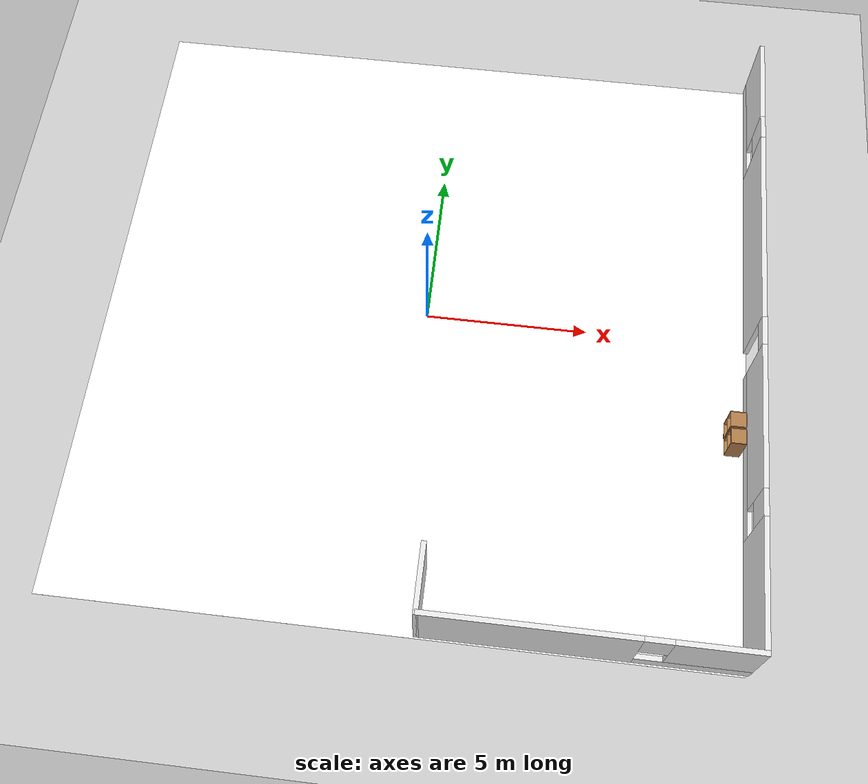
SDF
<sdf version="1.7">
 <world name="default">
  <model name="ground_plane">
   <static>1</static>
   <link name="link">
    <collision name="collision">
     <geometry><plane><normal>0 0 1</normal><size>100 100</size></plane></geometry>
     <surface><friction><ode><mu>100</mu><mu2>50</mu2></ode></friction></surface>
    </collision>
    <visual name="visual">
     <cast_shadows>0</cast_shadows>
     <geometry><plane><normal>0 0 1</normal><size>100 100</size></plane></geometry>
     <material>
      <script><uri>file://media/materials/scripts/gazebo.material</uri><name>Gazebo/Grey</name></script>
     </material>
    </visual>
   </link>
  </model>
  <model name="office_env_w_complete_new">
   <link name="Wall_15">
    <pose>0.931272 -9 0 0 0 -1.5708</pose>
    <visual name="Wall_15_Visual">
     <pose>0 0 1.25 0 -0 0</pose>
     <geometry><box><size>2 0.15 2.5</size></box></geometry>
     <material>
      <script>
       <uri>model://office_env_w/materials/scripts</uri>
       <uri>model://office_env_w/materials/textures</uri>
       <name>wall_white</name>
      </script>
      <shader type="pixel"/>
     </material>
     <meta><layer>0</layer></meta>
    </visual>
    <collision name="Wall_15_Collision">
     <pose>0 0 1.25 0 -0 0</pose>
     <geometry><box><size>2 0.15 2.5</size></box></geometry>
     <surface>
      <friction>
       <ode><mu>1</mu><mu2>1</mu2><fdir1>0 0 0</fdir1><slip1>0</slip1><slip2>0</slip2></ode>
       <torsional>
        <coefficient>1</coefficient>
        <patch_radius>0</patch_radius>
        <surface_radius>0</surface_radius>
        <use_patch_radius>1</use_patch_radius>
        <ode><slip>0</slip></ode>
       </torsional>
      </friction>
      <bounce><restitution_coefficient>0</restitution_coefficient><threshold>1e+06</threshold></bounce>
      <contact>
       <collide_without_contact>0</collide_without_contact>
       <collide_without_contact_bitmask>1</collide_without_contact_bitmask>
       <collide_bitmask>1</collide_bitmask>
       <ode>
        <soft_cfm>0</soft_cfm>
        <soft_erp>0.2</soft_erp>
        <kp>1e+13</kp>
        <kd>1</kd>
        <max_vel>0.01</max_vel>
        <min_depth>0</min_depth>
       </ode>
       <bullet>
        <split_impulse>1</split_impulse>
        <split_impulse_penetration_threshold>-0.01</split_impulse_penetration_threshold>
        <soft_cfm>0</soft_cfm>
        <soft_erp>0.2</soft_erp>
        <kp>1e+13</kp>
        <kd>1</kd>
       </bullet>
      </contact>
     </surface>
    </collision>
   </link>
   <link name="Wall_16">
    <pose>5.48127 -9.925 0 0 -0 0</pose>
    <visual name="Wall_16_Visual_0">
     <pose>-1.61303 0 1.25 0 -0 0</pose>
     <geometry><box><size>6.02393 0.15 2.5</size></box></geometry>
     <material>
      <script>
       <uri>model://office_env_w/materials/scripts</uri>
       <uri>model://office_env_w/materials/textures</uri>
       <name>wall_white</name>
      </script>
      <shader type="pixel"/>
     </material>
     <meta><layer>0</layer></meta>
    </visual>
    <visual name="Wall_16_Visual_1">
     <pose>3.01197 0 0.25 0 -0 0</pose>
     <geometry><box><size>3.22607 0.15 0.5</size></box></geometry>
     <material>
      <script>
       <uri>model://office_env_w/materials/scripts</uri>
       <uri>model://office_env_w/materials/textures</uri>
       <name>wall_white</name>
      </script>
      <shader type="pixel"/>
     </material>
     <meta><layer>0</layer></meta>
    </visual>
    <visual name="Wall_16_Visual_2">
     <pose>3.41197 0 1.5 0 -0 0</pose>
     <geometry><box><size>2.42607 0.15 2</size></box></geometry>
     <material>
      <script>
       <uri>model://office_env_w/materials/scripts</uri>
       <uri>model://office_env_w/materials/textures</uri>
       <name>wall_white</name>
      </script>
      <shader type="pixel"/>
     </material>
     <meta><layer>0</layer></meta>
    </visual>
    <visual name="Wall_16_Visual_3">
     <pose>1.79893 0 1.9 0 -0 0</pose>
     <geometry><box><size>0.8 0.15 1.2</size></box></geometry>
     <material>
      <script>
       <uri>model://office_env_w/materials/scripts</uri>
       <uri>model://office_env_w/materials/textures</uri>
       <name>wall_white</name>
      </script>
      <shader type="pixel"/>
     </material>
     <meta><layer>0</layer></meta>
    </visual>
    <collision name="Wall_16_Collision_0">
     <pose>-1.61303 0 1.25 0 -0 0</pose>
     <geometry><box><size>6.02393 0.15 2.5</size></box></geometry>
     <surface>
      <friction>
       <ode><mu>1</mu><mu2>1</mu2><fdir1>0 0 0</fdir1><slip1>0</slip1><slip2>0</slip2></ode>
       <torsional>
        <coefficient>1</coefficient>
        <patch_radius>0</patch_radius>
        <surface_radius>0</surface_radius>
        <use_patch_radius>1</use_patch_radius>
        <ode><slip>0</slip></ode>
       </torsional>
      </friction>
      <bounce><restitution_coefficient>0</restitution_coefficient><threshold>1e+06</threshold></bounce>
      <contact>
       <collide_without_contact>0</collide_without_contact>
       <collide_without_contact_bitmask>1</collide_without_contact_bitmask>
       <collide_bitmask>1</collide_bitmask>
       <ode>
        <soft_cfm>0</soft_cfm>
        <soft_erp>0.2</soft_erp>
        <kp>1e+13</kp>
        <kd>1</kd>
        <max_vel>0.01</max_vel>
        <min_depth>0</min_depth>
       </ode>
       <bullet>
        <split_impulse>1</split_impulse>
        <split_impulse_penetration_threshold>-0.01</split_impulse_penetration_threshold>
        <soft_cfm>0</soft_cfm>
        <soft_erp>0.2</soft_erp>
        <kp>1e+13</kp>
        <kd>1</kd>
       </bullet>
      </contact>
     </surface>
    </collision>
    <collision name="Wall_16_Collision_1">
     <pose>3.01197 0 0.25 0 -0 0</pose>
     <geometry><box><size>3.22607 0.15 0.5</size></box></geometry>
     <surface>
      <friction>
       <ode><mu>1</mu><mu2>1</mu2><fdir1>0 0 0</fdir1><slip1>0</slip1><slip2>0</slip2></ode>
       <torsional>
        <coefficient>1</coefficient>
        <patch_radius>0</patch_radius>
        <surface_radius>0</surface_radius>
        <use_patch_radius>1</use_patch_radius>
        <ode><slip>0</slip></ode>
       </torsional>
      </friction>
      <bounce><restitution_coefficient>0</restitution_coefficient><threshold>1e+06</threshold></bounce>
      <contact>
       <collide_without_contact>0</collide_without_contact>
       <collide_without_contact_bitmask>1</collide_without_contact_bitmask>
       <collide_bitmask>1</collide_bitmask>
       <ode>
        <soft_cfm>0</soft_cfm>
        <soft_erp>0.2</soft_erp>
        <kp>1e+13</kp>
        <kd>1</kd>
        <max_vel>0.01</max_vel>
        <min_depth>0</min_depth>
       </ode>
       <bullet>
        <split_impulse>1</split_impulse>
        <split_impulse_penetration_threshold>-0.01</split_impulse_penetration_threshold>
        <soft_cfm>0</soft_cfm>
        <soft_erp>0.2</soft_erp>
        <kp>1e+13</kp>
        <kd>1</kd>
       </bullet>
      </contact>
     </surface>
    </collision>
    <collision name="Wall_16_Collision_2">
     <pose>3.41197 0 1.5 0 -0 0</pose>
     <geometry><box><size>2.42607 0.15 2</size></box></geometry>
     <surface>
      <friction>
       <ode><mu>1</mu><mu2>1</mu2><fdir1>0 0 0</fdir1><slip1>0</slip1><slip2>0</slip2></ode>
       <torsional>
        <coefficient>1</coefficient>
        <patch_radius>0</patch_radius>
        <surface_radius>0</surface_radius>
        <use_patch_radius>1</use_patch_radius>
        <ode><slip>0</slip></ode>
       </torsional>
      </friction>
      <bounce><restitution_coefficient>0</restitution_coefficient><threshold>1e+06</threshold></bounce>
      <contact>
       <collide_without_contact>0</collide_without_contact>
       <collide_without_contact_bitmask>1</collide_without_contact_bitmask>
       <collide_bitmask>1</collide_bitmask>
       <ode>
        <soft_cfm>0</soft_cfm>
        <soft_erp>0.2</soft_erp>
        <kp>1e+13</kp>
        <kd>1</kd>
        <max_vel>0.01</max_vel>
        <min_depth>0</min_depth>
       </ode>
       <bullet>
        <split_impulse>1</split_impulse>
        <split_impulse_penetration_threshold>-0.01</split_impulse_penetration_threshold>
        <soft_cfm>0</soft_cfm>
        <soft_erp>0.2</soft_erp>
        <kp>1e+13</kp>
        <kd>1</kd>
       </bullet>
      </contact>
     </surface>
    </collision>
    <collision name="Wall_16_Collision_3">
     <pose>1.79893 0 1.9 0 -0 0</pose>
     <geometry><box><size>0.8 0.15 1.2</size></box></geometry>
     <surface>
      <friction>
       <ode><mu>1</mu><mu2>1</mu2><fdir1>0 0 0</fdir1><slip1>0</slip1><slip2>0</slip2></ode>
       <torsional>
        <coefficient>1</coefficient>
        <patch_radius>0</patch_radius>
        <surface_radius>0</surface_radius>
        <use_patch_radius>1</use_patch_radius>
        <ode><slip>0</slip></ode>
       </torsional>
      </friction>
      <bounce><restitution_coefficient>0</restitution_coefficient><threshold>1e+06</threshold></bounce>
      <contact>
       <collide_without_contact>0</collide_without_contact>
       <collide_without_contact_bitmask>1</collide_without_contact_bitmask>
       <collide_bitmask>1</collide_bitmask>
       <ode>
        <soft_cfm>0</soft_cfm>
        <soft_erp>0.2</soft_erp>
        <kp>1e+13</kp>
        <kd>1</kd>
        <max_vel>0.01</max_vel>
        <min_depth>0</min_depth>
       </ode>
       <bullet>
        <split_impulse>1</split_impulse>
        <split_impulse_penetration_threshold>-0.01</split_impulse_penetration_threshold>
        <soft_cfm>0</soft_cfm>
        <soft_erp>0.2</soft_erp>
        <kp>1e+13</kp>
        <kd>1</kd>
       </bullet>
      </contact>
     </surface>
    </collision>
   </link>
   <link name="Wall_17">
    <pose>10.0313 0 0 0 -0 1.5708</pose>
    <visual name="Wall_17_Visual_0">
     <pose>-8.12184 0 1.25 0 -0 0</pose>
     <geometry><box><size>3.75631 0.15 2.5</size></box></geometry>
     <material>
      <script>
       <uri>model://office_env_w/materials/scripts</uri>
       <uri>model://office_env_w/materials/textures</uri>
       <name>wall_white</name>
      </script>
      <shader type="pixel"/>
     </material>
     <meta><layer>0</layer></meta>
    </visual>
    <visual name="Wall_17_Visual_1">
     <pose>3.09096 0 1.25 0 -0 0</pose>
     <geometry><box><size>6.45362 0.15 2.5</size></box></geometry>
     <material>
      <script>
       <uri>model://office_env_w/materials/scripts</uri>
       <uri>model://office_env_w/materials/textures</uri>
       <name>wall_white</name>
      </script>
      <shader type="pixel"/>
     </material>
     <meta><layer>0</layer></meta>
    </visual>
    <visual name="Wall_17_Visual_2">
     <pose>-3.63977 0 0.25 0 -0 0</pose>
     <geometry><box><size>5.20784 0.15 0.5</size></box></geometry>
     <material>
      <script>
       <uri>model://office_env_w/materials/scripts</uri>
       <uri>model://office_env_w/materials/textures</uri>
       <name>wall_white</name>
      </script>
      <shader type="pixel"/>
     </material>
     <meta><layer>0</layer></meta>
    </visual>
    <visual name="Wall_17_Visual_3">
     <pose>8.15888 0 0.25 0 -0 0</pose>
     <geometry><box><size>3.68223 0.15 0.5</size></box></geometry>
     <material>
      <script>
       <uri>model://office_env_w/materials/scripts</uri>
       <uri>model://office_env_w/materials/textures</uri>
       <name>wall_white</name>
      </script>
      <shader type="pixel"/>
     </material>
     <meta><layer>0</layer></meta>
    </visual>
    <visual name="Wall_17_Visual_4">
     <pose>-3.23977 0 1.5 0 -0 0</pose>
     <geometry><box><size>4.40784 0.15 2</size></box></geometry>
     <material>
      <script>
       <uri>model://office_env_w/materials/scripts</uri>
       <uri>model://office_env_w/materials/textures</uri>
       <name>wall_white</name>
      </script>
      <shader type="pixel"/>
     </material>
     <meta><layer>0</layer></meta>
    </visual>
    <visual name="Wall_17_Visual_5">
     <pose>-3.23977 0 1.5 0 -0 0</pose>
     <geometry><box><size>4.40784 0.15 2</size></box></geometry>
     <material>
      <script>
       <uri>model://office_env_w/materials/scripts</uri>
       <uri>model://office_env_w/materials/textures</uri>
       <name>wall_white</name>
      </script>
      <shader type="pixel"/>
     </material>
     <meta><layer>0</layer></meta>
    </visual>
    <visual name="Wall_17_Visual_6">
     <pose>8.55889 0 1.5 0 -0 0</pose>
     <geometry><box><size>2.88223 0.15 2</size></box></geometry>
     <material>
      <script>
       <uri>model://office_env_w/materials/scripts</uri>
       <uri>model://office_env_w/materials/textures</uri>
       <name>wall_white</name>
      </script>
      <shader type="pixel"/>
     </material>
     <meta><layer>0</layer></meta>
    </visual>
    <visual name="Wall_17_Visual_7">
     <pose>-5.84369 0 1.9 0 -0 0</pose>
     <geometry><box><size>0.8 0.15 1.2</size></box></geometry>
     <material>
      <script>
       <uri>model://office_env_w/materials/scripts</uri>
       <uri>model://office_env_w/materials/textures</uri>
       <name>wall_white</name>
      </script>
      <shader type="pixel"/>
     </material>
     <meta><layer>0</layer></meta>
    </visual>
    <visual name="Wall_17_Visual_8">
     <pose>6.71777 0 1.9 0 -0 0</pose>
     <geometry><box><size>0.8 0.15 1.2</size></box></geometry>
     <material>
      <script>
       <uri>model://office_env_w/materials/scripts</uri>
       <uri>model://office_env_w/materials/textures</uri>
       <name>wall_white</name>
      </script>
      <shader type="pixel"/>
     </material>
     <meta><layer>0</layer></meta>
    </visual>
    <visual name="Wall_17_Visual_9">
     <pose>-0.585848 0 2.25 0 -0 0</pose>
     <geometry><box><size>0.9 0.15 0.5</size></box></geometry>
     <material>
      <script>
       <uri>model://office_env_w/materials/scripts</uri>
       <uri>model://office_env_w/materials/textures</uri>
       <name>wall_white</name>
      </script>
      <shader type="pixel"/>
     </material>
     <meta><layer>0</layer></meta>
    </visual>
    <visual name="Wall_17_Visual_10">
     <pose>-0.585848 0 2.25 0 -0 0</pose>
     <geometry><box><size>0.9 0.15 0.5</size></box></geometry>
     <material>
      <script>
       <uri>model://office_env_w/materials/scripts</uri>
       <uri>model://office_env_w/materials/textures</uri>
       <name>wall_white</name>
      </script>
      <shader type="pixel"/>
     </material>
     <meta><layer>0</layer></meta>
    </visual>
    <collision name="Wall_17_Collision_0">
     <pose>-8.12184 0 1.25 0 -0 0</pose>
     <geometry><box><size>3.75631 0.15 2.5</size></box></geometry>
     <surface>
      <friction>
       <ode><mu>1</mu><mu2>1</mu2><fdir1>0 0 0</fdir1><slip1>0</slip1><slip2>0</slip2></ode>
       <torsional>
        <coefficient>1</coefficient>
        <patch_radius>0</patch_radius>
        <surface_radius>0</surface_radius>
        <use_patch_radius>1</use_patch_radius>
        <ode><slip>0</slip></ode>
       </torsional>
      </friction>
      <bounce><restitution_coefficient>0</restitution_coefficient><threshold>1e+06</threshold></bounce>
      <contact>
       <collide_without_contact>0</collide_without_contact>
       <collide_without_contact_bitmask>1</collide_without_contact_bitmask>
       <collide_bitmask>1</collide_bitmask>
       <ode>
        <soft_cfm>0</soft_cfm>
        <soft_erp>0.2</soft_erp>
        <kp>1e+13</kp>
        <kd>1</kd>
        <max_vel>0.01</max_vel>
        <min_depth>0</min_depth>
       </ode>
       <bullet>
        <split_impulse>1</split_impulse>
        <split_impulse_penetration_threshold>-0.01</split_impulse_penetration_threshold>
        <soft_cfm>0</soft_cfm>
        <soft_erp>0.2</soft_erp>
        <kp>1e+13</kp>
        <kd>1</kd>
       </bullet>
      </contact>
     </surface>
    </collision>
    <collision name="Wall_17_Collision_1">
     <pose>3.09096 0 1.25 0 -0 0</pose>
     <geometry><box><size>6.45362 0.15 2.5</size></box></geometry>
     <surface>
      <friction>
       <ode><mu>1</mu><mu2>1</mu2><fdir1>0 0 0</fdir1><slip1>0</slip1><slip2>0</slip2></ode>
       <torsional>
        <coefficient>1</coefficient>
        <patch_radius>0</patch_radius>
        <surface_radius>0</surface_radius>
        <use_patch_radius>1</use_patch_radius>
        <ode><slip>0</slip></ode>
       </torsional>
      </friction>
      <bounce><restitution_coefficient>0</restitution_coefficient><threshold>1e+06</threshold></bounce>
      <contact>
       <collide_without_contact>0</collide_without_contact>
       <collide_without_contact_bitmask>1</collide_without_contact_bitmask>
       <collide_bitmask>1</collide_bitmask>
       <ode>
        <soft_cfm>0</soft_cfm>
        <soft_erp>0.2</soft_erp>
        <kp>1e+13</kp>
        <kd>1</kd>
        <max_vel>0.01</max_vel>
        <min_depth>0</min_depth>
       </ode>
       <bullet>
        <split_impulse>1</split_impulse>
        <split_impulse_penetration_threshold>-0.01</split_impulse_penetration_threshold>
        <soft_cfm>0</soft_cfm>
        <soft_erp>0.2</soft_erp>
        <kp>1e+13</kp>
        <kd>1</kd>
       </bullet>
      </contact>
     </surface>
    </collision>
    <collision name="Wall_17_Collision_2">
     <pose>-3.63977 0 0.25 0 -0 0</pose>
     <geometry><box><size>5.20784 0.15 0.5</size></box></geometry>
     <surface>
      <friction>
       <ode><mu>1</mu><mu2>1</mu2><fdir1>0 0 0</fdir1><slip1>0</slip1><slip2>0</slip2></ode>
       <torsional>
        <coefficient>1</coefficient>
        <patch_radius>0</patch_radius>
        <surface_radius>0</surface_radius>
        <use_patch_radius>1</use_patch_radius>
        <ode><slip>0</slip></ode>
       </torsional>
      </friction>
      <bounce><restitution_coefficient>0</restitution_coefficient><threshold>1e+06</threshold></bounce>
      <contact>
       <collide_without_contact>0</collide_without_contact>
       <collide_without_contact_bitmask>1</collide_without_contact_bitmask>
       <collide_bitmask>1</collide_bitmask>
       <ode>
        <soft_cfm>0</soft_cfm>
        <soft_erp>0.2</soft_erp>
        <kp>1e+13</kp>
        <kd>1</kd>
        <max_vel>0.01</max_vel>
        <min_depth>0</min_depth>
       </ode>
       <bullet>
        <split_impulse>1</split_impulse>
        <split_impulse_penetration_threshold>-0.01</split_impulse_penetration_threshold>
        <soft_cfm>0</soft_cfm>
        <soft_erp>0.2</soft_erp>
        <kp>1e+13</kp>
        <kd>1</kd>
       </bullet>
      </contact>
     </surface>
    </collision>
    <collision name="Wall_17_Collision_3">
     <pose>8.15888 0 0.25 0 -0 0</pose>
     <geometry><box><size>3.68223 0.15 0.5</size></box></geometry>
     <surface>
      <friction>
       <ode><mu>1</mu><mu2>1</mu2><fdir1>0 0 0</fdir1><slip1>0</slip1><slip2>0</slip2></ode>
       <torsional>
        <coefficient>1</coefficient>
        <patch_radius>0</patch_radius>
        <surface_radius>0</surface_radius>
        <use_patch_radius>1</use_patch_radius>
        <ode><slip>0</slip></ode>
       </torsional>
      </friction>
      <bounce><restitution_coefficient>0</restitution_coefficient><threshold>1e+06</threshold></bounce>
      <contact>
       <collide_without_contact>0</collide_without_contact>
       <collide_without_contact_bitmask>1</collide_without_contact_bitmask>
       <collide_bitmask>1</collide_bitmask>
       <ode>
        <soft_cfm>0</soft_cfm>
        <soft_erp>0.2</soft_erp>
        <kp>1e+13</kp>
        <kd>1</kd>
        <max_vel>0.01</max_vel>
        <min_depth>0</min_depth>
       </ode>
       <bullet>
        <split_impulse>1</split_impulse>
        <split_impulse_penetration_threshold>-0.01</split_impulse_penetration_threshold>
        <soft_cfm>0</soft_cfm>
        <soft_erp>0.2</soft_erp>
        <kp>1e+13</kp>
        <kd>1</kd>
       </bullet>
      </contact>
     </surface>
    </collision>
    <collision name="Wall_17_Collision_4">
     <pose>-3.23977 0 1.5 0 -0 0</pose>
     <geometry><box><size>4.40784 0.15 2</size></box></geometry>
     <surface>
      <friction>
       <ode><mu>1</mu><mu2>1</mu2><fdir1>0 0 0</fdir1><slip1>0</slip1><slip2>0</slip2></ode>
       <torsional>
        <coefficient>1</coefficient>
        <patch_radius>0</patch_radius>
        <surface_radius>0</surface_radius>
        <use_patch_radius>1</use_patch_radius>
        <ode><slip>0</slip></ode>
       </torsional>
      </friction>
      <bounce><restitution_coefficient>0</restitution_coefficient><threshold>1e+06</threshold></bounce>
      <contact>
       <collide_without_contact>0</collide_without_contact>
       <collide_without_contact_bitmask>1</collide_without_contact_bitmask>
       <collide_bitmask>1</collide_bitmask>
       <ode>
        <soft_cfm>0</soft_cfm>
        <soft_erp>0.2</soft_erp>
        <kp>1e+13</kp>
        <kd>1</kd>
        <max_vel>0.01</max_vel>
        <min_depth>0</min_depth>
       </ode>
       <bullet>
        <split_impulse>1</split_impulse>
        <split_impulse_penetration_threshold>-0.01</split_impulse_penetration_threshold>
        <soft_cfm>0</soft_cfm>
        <soft_erp>0.2</soft_erp>
        <kp>1e+13</kp>
        <kd>1</kd>
       </bullet>
      </contact>
     </surface>
    </collision>
    <collision name="Wall_17_Collision_5">
     <pose>-3.23977 0 1.5 0 -0 0</pose>
     <geometry><box><size>4.40784 0.15 2</size></box></geometry>
     <surface>
      <friction>
       <ode><mu>1</mu><mu2>1</mu2><fdir1>0 0 0</fdir1><slip1>0</slip1><slip2>0</slip2></ode>
       <torsional>
        <coefficient>1</coefficient>
        <patch_radius>0</patch_radius>
        <surface_radius>0</surface_radius>
        <use_patch_radius>1</use_patch_radius>
        <ode><slip>0</slip></ode>
       </torsional>
      </friction>
      <bounce><restitution_coefficient>0</restitution_coefficient><threshold>1e+06</threshold></bounce>
      <contact>
       <collide_without_contact>0</collide_without_contact>
       <collide_without_contact_bitmask>1</collide_without_contact_bitmask>
       <collide_bitmask>1</collide_bitmask>
       <ode>
        <soft_cfm>0</soft_cfm>
        <soft_erp>0.2</soft_erp>
        <kp>1e+13</kp>
        <kd>1</kd>
        <max_vel>0.01</max_vel>
        <min_depth>0</min_depth>
       </ode>
       <bullet>
        <split_impulse>1</split_impulse>
        <split_impulse_penetration_threshold>-0.01</split_impulse_penetration_threshold>
        <soft_cfm>0</soft_cfm>
        <soft_erp>0.2</soft_erp>
        <kp>1e+13</kp>
        <kd>1</kd>
       </bullet>
      </contact>
     </surface>
    </collision>
    <collision name="Wall_17_Collision_6">
     <pose>8.55889 0 1.5 0 -0 0</pose>
     <geometry><box><size>2.88223 0.15 2</size></box></geometry>
     <surface>
      <friction>
       <ode><mu>1</mu><mu2>1</mu2><fdir1>0 0 0</fdir1><slip1>0</slip1><slip2>0</slip2></ode>
       <torsional>
        <coefficient>1</coefficient>
        <patch_radius>0</patch_radius>
        <surface_radius>0</surface_radius>
        <use_patch_radius>1</use_patch_radius>
        <ode><slip>0</slip></ode>
       </torsional>
      </friction>
      <bounce><restitution_coefficient>0</restitution_coefficient><threshold>1e+06</threshold></bounce>
      <contact>
       <collide_without_contact>0</collide_without_contact>
       <collide_without_contact_bitmask>1</collide_without_contact_bitmask>
       <collide_bitmask>1</collide_bitmask>
       <ode>
        <soft_cfm>0</soft_cfm>
        <soft_erp>0.2</soft_erp>
        <kp>1e+13</kp>
        <kd>1</kd>
        <max_vel>0.01</max_vel>
        <min_depth>0</min_depth>
       </ode>
       <bullet>
        <split_impulse>1</split_impulse>
        <split_impulse_penetration_threshold>-0.01</split_impulse_penetration_threshold>
        <soft_cfm>0</soft_cfm>
        <soft_erp>0.2</soft_erp>
        <kp>1e+13</kp>
        <kd>1</kd>
       </bullet>
      </contact>
     </surface>
    </collision>
    <collision name="Wall_17_Collision_7">
     <pose>-5.84369 0 1.9 0 -0 0</pose>
     <geometry><box><size>0.8 0.15 1.2</size></box></geometry>
     <surface>
      <friction>
       <ode><mu>1</mu><mu2>1</mu2><fdir1>0 0 0</fdir1><slip1>0</slip1><slip2>0</slip2></ode>
       <torsional>
        <coefficient>1</coefficient>
        <patch_radius>0</patch_radius>
        <surface_radius>0</surface_radius>
        <use_patch_radius>1</use_patch_radius>
        <ode><slip>0</slip></ode>
       </torsional>
      </friction>
      <bounce><restitution_coefficient>0</restitution_coefficient><threshold>1e+06</threshold></bounce>
      <contact>
       <collide_without_contact>0</collide_without_contact>
       <collide_without_contact_bitmask>1</collide_without_contact_bitmask>
       <collide_bitmask>1</collide_bitmask>
       <ode>
        <soft_cfm>0</soft_cfm>
        <soft_erp>0.2</soft_erp>
        <kp>1e+13</kp>
        <kd>1</kd>
        <max_vel>0.01</max_vel>
        <min_depth>0</min_depth>
       </ode>
       <bullet>
        <split_impulse>1</split_impulse>
        <split_impulse_penetration_threshold>-0.01</split_impulse_penetration_threshold>
        <soft_cfm>0</soft_cfm>
        <soft_erp>0.2</soft_erp>
        <kp>1e+13</kp>
        <kd>1</kd>
       </bullet>
      </contact>
     </surface>
    </collision>
    <collision name="Wall_17_Collision_9">
     <pose>-0.585848 0 2.25 0 -0 0</pose>
     <geometry><box><size>0.9 0.15 0.5</size></box></geometry>
     <surface>
      <friction>
       <ode><mu>1</mu><mu2>1</mu2><fdir1>0 0 0</fdir1><slip1>0</slip1><slip2>0</slip2></ode>
       <torsional>
        <coefficient>1</coefficient>
        <patch_radius>0</patch_radius>
        <surface_radius>0</surface_radius>
        <use_patch_radius>1</use_patch_radius>
        <ode><slip>0</slip></ode>
       </torsional>
      </friction>
      <bounce><restitution_coefficient>0</restitution_coefficient><threshold>1e+06</threshold></bounce>
      <contact>
       <collide_without_contact>0</collide_without_contact>
       <collide_without_contact_bitmask>1</collide_without_contact_bitmask>
       <collide_bitmask>1</collide_bitmask>
       <ode>
        <soft_cfm>0</soft_cfm>
        <soft_erp>0.2</soft_erp>
        <kp>1e+13</kp>
        <kd>1</kd>
        <max_vel>0.01</max_vel>
        <min_depth>0</min_depth>
       </ode>
       <bullet>
        <split_impulse>1</split_impulse>
        <split_impulse_penetration_threshold>-0.01</split_impulse_penetration_threshold>
        <soft_cfm>0</soft_cfm>
        <soft_erp>0.2</soft_erp>
        <kp>1e+13</kp>
        <kd>1</kd>
       </bullet>
      </contact>
     </surface>
    </collision>
    <collision name="Wall_17_Collision_8">
     <pose>6.71777 0 1.9 0 -0 0</pose>
     <geometry><box><size>0.8 0.15 1.2</size></box></geometry>
     <surface>
      <friction>
       <ode><mu>1</mu><mu2>1</mu2><fdir1>0 0 0</fdir1><slip1>0</slip1><slip2>0</slip2></ode>
       <torsional>
        <coefficient>1</coefficient>
        <patch_radius>0</patch_radius>
        <surface_radius>0</surface_radius>
        <use_patch_radius>1</use_patch_radius>
        <ode><slip>0</slip></ode>
       </torsional>
      </friction>
      <bounce><restitution_coefficient>0</restitution_coefficient><threshold>1e+06</threshold></bounce>
      <contact>
       <collide_without_contact>0</collide_without_contact>
       <collide_without_contact_bitmask>1</collide_without_contact_bitmask>
       <collide_bitmask>1</collide_bitmask>
       <ode>
        <soft_cfm>0</soft_cfm>
        <soft_erp>0.2</soft_erp>
        <kp>1e+13</kp>
        <kd>1</kd>
        <max_vel>0.01</max_vel>
        <min_depth>0</min_depth>
       </ode>
       <bullet>
        <split_impulse>1</split_impulse>
        <split_impulse_penetration_threshold>-0.01</split_impulse_penetration_threshold>
        <soft_cfm>0</soft_cfm>
        <soft_erp>0.2</soft_erp>
        <kp>1e+13</kp>
        <kd>1</kd>
       </bullet>
      </contact>
     </surface>
    </collision>
    <collision name="Wall_17_Collision_10">
     <pose>-0.585848 0 2.25 0 -0 0</pose>
     <geometry><box><size>0.9 0.15 0.5</size></box></geometry>
     <surface>
      <friction>
       <ode><mu>1</mu><mu2>1</mu2><fdir1>0 0 0</fdir1><slip1>0</slip1><slip2>0</slip2></ode>
       <torsional>
        <coefficient>1</coefficient>
        <patch_radius>0</patch_radius>
        <surface_radius>0</surface_radius>
        <use_patch_radius>1</use_patch_radius>
        <ode><slip>0</slip></ode>
       </torsional>
      </friction>
      <bounce><restitution_coefficient>0</restitution_coefficient><threshold>1e+06</threshold></bounce>
      <contact>
       <collide_without_contact>0</collide_without_contact>
       <collide_without_contact_bitmask>1</collide_without_contact_bitmask>
       <collide_bitmask>1</collide_bitmask>
       <ode>
        <soft_cfm>0</soft_cfm>
        <soft_erp>0.2</soft_erp>
        <kp>1e+13</kp>
        <kd>1</kd>
        <max_vel>0.01</max_vel>
        <min_depth>0</min_depth>
       </ode>
       <bullet>
        <split_impulse>1</split_impulse>
        <split_impulse_penetration_threshold>-0.01</split_impulse_penetration_threshold>
        <soft_cfm>0</soft_cfm>
        <soft_erp>0.2</soft_erp>
        <kp>1e+13</kp>
        <kd>1</kd>
       </bullet>
      </contact>
     </surface>
    </collision>
   </link>
   <static>1</static>
   <pose>-0.0865 -0.0215 0 0 -0 0</pose>
  </model>
  <model name="cabinet">
   <static>1</static>
   <link name="cabinet_bottom_plate">
    <inertial>
     <pose>0 0 -1 0 -0 0</pose>
     <inertia><ixx>2.05</ixx><ixy>0</ixy><ixz>0</ixz><iyy>2.05</iyy><iyz>0</iyz><izz>2.05</izz></inertia>
     <mass>25</mass>
    </inertial>
    <collision name="cabinet_bottom_plate_geom">
     <pose>0 0 0.01 0 -0 0</pose>
     <geometry><box><size>0.45 0.45 0.02</size></box></geometry>
    </collision>
    <visual name="cabinet_bottom_plate_geom_visual">
     <pose>0 0 0.01 0 -0 0</pose>
     <geometry><box><size>0.45 0.45 0.02</size></box></geometry>
     <material>
      <script><uri>file://media/materials/scripts/gazebo.material</uri><name>Gazebo/Wood</name></script>
     </material>
    </visual>
    <collision name="cabinet_bottom_plate_geom_cabinet_back_plate">
     <pose>0.235 0 0.51 0 -0 0</pose>
     <geometry><box><size>0.02 0.45 1.02</size></box></geometry>
    </collision>
    <visual name="cabinet_bottom_plate_geom_cabinet_back_plate_visual">
     <pose>0.235 0 0.51 0 -0 0</pose>
     <geometry><box><size>0.02 0.45 1.02</size></box></geometry>
     <material>
      <script><uri>file://media/materials/scripts/gazebo.material</uri><name>Gazebo/Wood</name></script>
     </material>
    </visual>
    <collision name="cabinet_bottom_plate_geom_cabinet_left_plate">
     <pose>0 0.235 0.51 0 -0 0</pose>
     <geometry><box><size>0.45 0.02 1.02</size></box></geometry>
    </collision>
    <visual name="cabinet_bottom_plate_geom_cabinet_left_plate_visual">
     <pose>0 0.235 0.51 0 -0 0</pose>
     <geometry><box><size>0.45 0.02 1.02</size></box></geometry>
     <material>
      <script><uri>file://media/materials/scripts/gazebo.material</uri><name>Gazebo/Wood</name></script>
     </material>
    </visual>
    <collision name="cabinet_bottom_plate_geom_cabinet_middle_plate">
     <pose>0 0 0.51 0 -0 0</pose>
     <geometry><box><size>0.45 0.45 0.02</size></box></geometry>
    </collision>
    <visual name="cabinet_bottom_plate_geom_cabinet_middle_plate_visual">
     <pose>0 0 0.51 0 -0 0</pose>
     <geometry><box><size>0.45 0.45 0.02</size></box></geometry>
     <material>
      <script><uri>file://media/materials/scripts/gazebo.material</uri><name>Gazebo/Wood</name></script>
     </material>
    </visual>
    <collision name="cabinet_bottom_plate_geom_cabinet_right_plate">
     <pose>0 -0.235 0.51 0 -0 0</pose>
     <geometry><box><size>0.45 0.02 1.02</size></box></geometry>
    </collision>
    <visual name="cabinet_bottom_plate_geom_cabinet_right_plate_visual">
     <pose>0 -0.235 0.51 0 -0 0</pose>
     <geometry><box><size>0.45 0.02 1.02</size></box></geometry>
     <material>
      <script><uri>file://media/materials/scripts/gazebo.material</uri><name>Gazebo/Wood</name></script>
     </material>
    </visual>
    <collision name="cabinet_bottom_plate_geom_cabinet_top_plate">
     <pose>0 0 1.01 0 -0 0</pose>
     <geometry><box><size>0.45 0.45 0.02</size></box></geometry>
    </collision>
    <visual name="cabinet_bottom_plate_geom_cabinet_top_plate_visual">
     <pose>0 0 1.01 0 -0 0</pose>
     <geometry><box><size>0.45 0.45 0.02</size></box></geometry>
     <material>
      <script><uri>file://media/materials/scripts/gazebo.material</uri><name>Gazebo/Wood</name></script>
     </material>
    </visual>
   </link>
   <pose>9.51009 -2.85099 0 0 -0 0</pose>
  </model>
  <model name="cabinet_clone">
   <static>1</static>
   <link name="cabinet_bottom_plate">
    <inertial>
     <pose>0 0 -1 0 -0 0</pose>
     <inertia><ixx>2.05</ixx><ixy>0</ixy><ixz>0</ixz><iyy>2.05</iyy><iyz>0</iyz><izz>2.05</izz></inertia>
     <mass>25</mass>
    </inertial>
    <collision name="cabinet_bottom_plate_geom">
     <pose>0 0 0.01 0 -0 0</pose>
     <geometry><box><size>0.45 0.45 0.02</size></box></geometry>
    </collision>
    <visual name="cabinet_bottom_plate_geom_visual">
     <pose>0 0 0.01 0 -0 0</pose>
     <geometry><box><size>0.45 0.45 0.02</size></box></geometry>
     <material>
      <script><uri>file://media/materials/scripts/gazebo.material</uri><name>Gazebo/Wood</name></script>
     </material>
    </visual>
    <collision name="cabinet_bottom_plate_geom_cabinet_back_plate">
     <pose>0.235 0 0.51 0 -0 0</pose>
     <geometry><box><size>0.02 0.45 1.02</size></box></geometry>
    </collision>
    <visual name="cabinet_bottom_plate_geom_cabinet_back_plate_visual">
     <pose>0.235 0 0.51 0 -0 0</pose>
     <geometry><box><size>0.02 0.45 1.02</size></box></geometry>
     <material>
      <script><uri>file://media/materials/scripts/gazebo.material</uri><name>Gazebo/Wood</name></script>
     </material>
    </visual>
    <collision name="cabinet_bottom_plate_geom_cabinet_left_plate">
     <pose>0 0.235 0.51 0 -0 0</pose>
     <geometry><box><size>0.45 0.02 1.02</size></box></geometry>
    </collision>
    <visual name="cabinet_bottom_plate_geom_cabinet_left_plate_visual">
     <pose>0 0.235 0.51 0 -0 0</pose>
     <geometry><box><size>0.45 0.02 1.02</size></box></geometry>
     <material>
      <script><uri>file://media/materials/scripts/gazebo.material</uri><name>Gazebo/Wood</name></script>
     </material>
    </visual>
    <collision name="cabinet_bottom_plate_geom_cabinet_middle_plate">
     <pose>0 0 0.51 0 -0 0</pose>
     <geometry><box><size>0.45 0.45 0.02</size></box></geometry>
    </collision>
    <visual name="cabinet_bottom_plate_geom_cabinet_middle_plate_visual">
     <pose>0 0 0.51 0 -0 0</pose>
     <geometry><box><size>0.45 0.45 0.02</size></box></geometry>
     <material>
      <script><uri>file://media/materials/scripts/gazebo.material</uri><name>Gazebo/Wood</name></script>
     </material>
    </visual>
    <collision name="cabinet_bottom_plate_geom_cabinet_right_plate">
     <pose>0 -0.235 0.51 0 -0 0</pose>
     <geometry><box><size>0.45 0.02 1.02</size></box></geometry>
    </collision>
    <visual name="cabinet_bottom_plate_geom_cabinet_right_plate_visual">
     <pose>0 -0.235 0.51 0 -0 0</pose>
     <geometry><box><size>0.45 0.02 1.02</size></box></geometry>
     <material>
      <script><uri>file://media/materials/scripts/gazebo.material</uri><name>Gazebo/Wood</name></script>
     </material>
    </visual>
    <collision name="cabinet_bottom_plate_geom_cabinet_top_plate">
     <pose>0 0 1.01 0 -0 0</pose>
     <geometry><box><size>0.45 0.45 0.02</size></box></geometry>
    </collision>
    <visual name="cabinet_bottom_plate_geom_cabinet_top_plate_visual">
     <pose>0 0 1.01 0 -0 0</pose>
     <geometry><box><size>0.45 0.45 0.02</size></box></geometry>
     <material>
      <script><uri>file://media/materials/scripts/gazebo.material</uri><name>Gazebo/Wood</name></script>
     </material>
    </visual>
   </link>
   <pose>9.52181 -3.37795 0 0 -0 0</pose>
  </model>
  <model name="Floor_room_without_collision">
   <link name="main">
    <pose>0 0 0.01 0 -0 0</pose>
    <inertial>
     <mass>1</mass>
     <inertia><ixx>1</ixx><ixy>0</ixy><ixz>0</ixz><iyy>1</iyy><iyz>0</iyz><izz>1</izz></inertia>
    </inertial>
    <visual name="main_Visual">
     <geometry><box><size>20 20 0.001</size></box></geometry>
     <material>
      <script>
       <uri>model://Floor_room/materials/scripts</uri>
       <uri>model://Floor_room/materials/textures</uri>
       <name>floor_room</name>
      </script>
      <shader type="pixel"><normal_map>__default__</normal_map></shader>
      <ambient>1 1 1 1</ambient>
      <diffuse>1 1 1 1</diffuse>
      <specular>0 0 0 1</specular>
      <emissive>0 0 0 1</emissive>
     </material>
    </visual>
    <collision name="main_Collision">
     <geometry><box><size>0 0 0</size></box></geometry>
     <surface>
      <friction>
       <ode><mu>1</mu><mu2>1</mu2><fdir1>0 0 0</fdir1><slip1>0</slip1><slip2>0</slip2></ode>
       <torsional>
        <coefficient>1</coefficient>
        <patch_radius>0</patch_radius>
        <surface_radius>0</surface_radius>
        <use_patch_radius>1</use_patch_radius>
        <ode><slip>0</slip></ode>
       </torsional>
      </friction>
      <bounce><restitution_coefficient>0</restitution_coefficient><threshold>1e+06</threshold></bounce>
      <contact>
       <collide_without_contact>0</collide_without_contact>
       <collide_without_contact_bitmask>1</collide_without_contact_bitmask>
       <collide_bitmask>1</collide_bitmask>
       <ode>
        <soft_cfm>0</soft_cfm>
        <soft_erp>0.2</soft_erp>
        <kp>1e+13</kp>
        <kd>1</kd>
        <max_vel>0.01</max_vel>
        <min_depth>0</min_depth>
       </ode>
       <bullet>
        <split_impulse>1</split_impulse>
        <split_impulse_penetration_threshold>-0.01</split_impulse_penetration_threshold>
        <soft_cfm>0</soft_cfm>
        <soft_erp>0.2</soft_erp>
        <kp>1e+13</kp>
        <kd>1</kd>
       </bullet>
      </contact>
     </surface>
    </collision>
   </link>
   <static>1</static>
   <pose>-0.053595 -0.06872 0 0 -0 0</pose>
  </model>
 </world>
</sdf>
